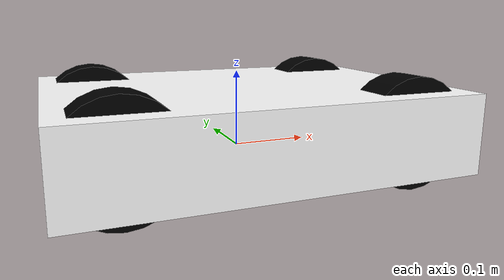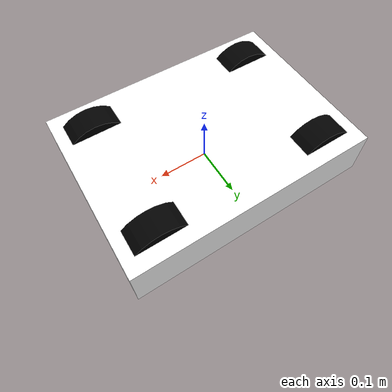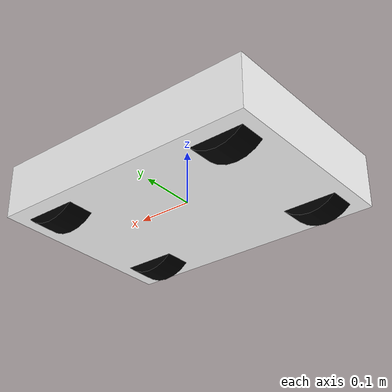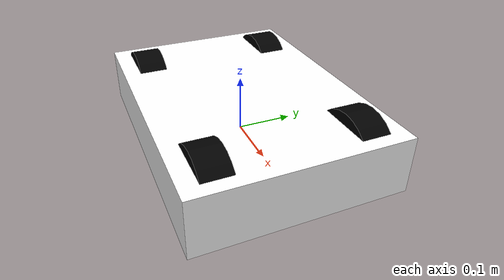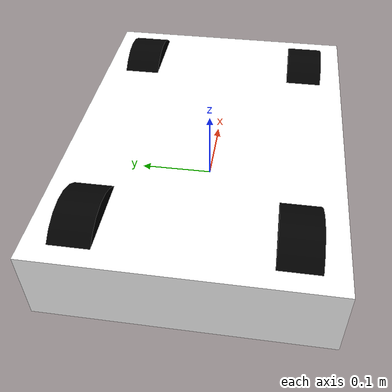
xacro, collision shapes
<?xml version="1.0" encoding="utf-8"?>

<robot name="fw_mini" xmlns:xacro="http://www.ros.org/wiki/xacro">

    <xacro:include filename="$(find fw-mini)/urdf/macros.xacro" />

    <link name="base_footprint">
    </link>

    <link name="base_link">
        <visual>
            <geometry>
                <mesh filename="package://fw-mini/meshes/fw-mini-chassis.STL" scale="1 1 1"/>
            </geometry>
            <origin xyz="0.2475 0.19 0.07" rpy="1.57 0 -1.57" />
            <material name="white">
                <color rgba="1 1 1 1" />
            </material>
        </visual>
        <collision>
            <geometry>
                <box size="0.495 0.36 0.1" />
            </geometry>
            <origin xyz="0.0 0.0 0.0" rpy="0.0 0.0 0.0" />
        </collision>
        <inertial>
            <origin xyz="0 0 0" />
            <mass value="20" />
            <inertia ixx="0.132" ixy="0" ixz="0" iyy="0.147" iyz="0" izz="0.0182" />
        </inertial>
    </link>

    <joint name="base_link2base_footprint" type="fixed">
        <parent link="base_footprint" />
        <child link="base_link"/>
        <origin xyz="0 0 0.032" />
    </joint>

    <link name="left_steering_hinge">
        <visual>
            <geometry>
                <cylinder radius="0.02" length="0.005" />
            </geometry>
            <origin xyz="0 0 0" rpy="1.57 0 0" />
            <material name="black">
                <color rgba="0.0 0.0 0.0 1.0" />
            </material>
        </visual>
        <collision>
            <geometry>
                <cylinder radius="0.01" length="0.005" />
            </geometry>
            <origin xyz="0.0 0.0 0.0" rpy="1.57 0.0 0.0" />
        </collision>
        <inertial>
            <origin xyz="0 0 0" />
            <mass value="1" />
            <inertia ixx="2.7E-05" ixy="0" ixz="0" iyy="2.7E-05" iyz="0" izz="5E-05" />
        </inertial>
    </link>

    <joint name="left_steering_hinge_joint" type="revolute">
        <parent link="base_link" />
        <child link="left_steering_hinge" />
        <origin xyz="0.175 0.125 0" />
        <axis xyz="0 0 1" />
        <limit lower="-1.57" upper="1.57" effort="10.0" velocity="50.0"/>
    </joint>

    <link name="left_front_wheel">
        <visual>
            <geometry>
                <mesh filename="package://fw-mini/meshes/fw-mini-luntai.STL" scale="1 1 1"/>
            </geometry>
            <origin xyz="0.073 -0.305 0.425" rpy="1.57 1.57 -3.14" />
            <material name="black">
                <color rgba="0.0 0.0 0.0 1.0" />
            </material>
        </visual>
        <collision>
            <geometry>
                <cylinder radius="0.07" length="0.05" />
            </geometry>
            <origin xyz="0.0 0.0 0.0" rpy="1.57 0.0 0.0" />
        </collision>
        <inertial>
            <origin xyz="0 0 0" />
            <mass value="4" />
            <inertia
            ixx="0.01603" ixy="0" ixz="0"
            iyy="0.01603" iyz="0"
            izz="0.0288"
            />
        </inertial>
    </link>

    <joint name="left_front_wheel_joint" type="continuous">
        <parent link="left_steering_hinge" />
        <child link="left_front_wheel" />
        <origin xyz="0 0.0 0" />
        <axis xyz="0 1 0" />
        <limit effort="10" velocity="1000" />
    </joint>

    <link name="right_steering_hinge">
        <visual>
            <geometry>
                 <cylinder radius="0.02" length="0.005" />
            </geometry>
            <origin xyz="0 0 0" rpy="1.57 0 0" />
            <material name="black">
                <color rgba="0.0 0.0 0.0 1.0" />
            </material>
        </visual>
        <collision>
            <geometry>
                <cylinder radius="0.01" length="0.005" />
            </geometry>
            <origin xyz="0.0 0.0 0.0" rpy="1.57 0.0 0.0" />
        </collision>
        <inertial>
            <origin xyz="0 0 0" />
            <mass value="1" />
            <inertia ixx="2.7E-05" ixy="0" ixz="0" iyy="2.7E-05" iyz="0" izz="5E-05" />
        </inertial>
    </link>

    <joint name="right_steering_hinge_joint" type="revolute">
        <parent link="base_link" />
        <child link="right_steering_hinge" />
        <origin xyz="0.175 -0.125 0" />
        <axis xyz="0 0 1" />
        <limit lower="-1.57" upper="1.57" effort="10.0" velocity="50.0"/>
    </joint>

     <link name="right_front_wheel">
        <visual>
            <geometry>
                <mesh filename="package://fw-mini/meshes/fw-mini-luntai.STL" scale="1 1 1"/>
            </geometry>
            <origin xyz="-0.073 0.305 0.425" rpy="1.57 1.57 0" />
            <material name="black">
                <color rgba="0.0 0.0 0.0 1.0" />
            </material>
        </visual>
        <collision>
            <geometry>
                <cylinder radius="0.07" length="0.05" />
            </geometry>
            <origin xyz="0.0 0.0 0.0" rpy="1.57 0.0 0.0" />
        </collision>
        <inertial>
            <origin xyz="0 0 0" />
            <mass value="4" />
            <inertia
            ixx="0.01603" ixy="0" ixz="0"
            iyy="0.01603" iyz="0"
            izz="0.0288"
            />
        </inertial>
    </link>

    <joint name="right_front_wheel_joint" type="continuous">
        <parent link="right_steering_hinge" />
        <child link="right_front_wheel" />
        <origin xyz="0 -0.0 0" />
        <axis xyz="0 1 0" />
        <limit effort="10" velocity="1000" />
    </joint>

    <link name="rear_left_steering_hinge">
        <visual>
            <geometry>
                <cylinder radius="0.02" length="0.005" />
            </geometry>
            <origin xyz="0 0 0" rpy="1.57 0 0" />
            <material name="black">
                <color rgba="0.0 0.0 0.0 1.0" />
            </material>
        </visual>
        <collision>
            <geometry>
                <cylinder radius="0.01" length="0.005" />
            </geometry>
            <origin xyz="0.0 0.0 0.0" rpy="1.57 0.0 0.0" />
        </collision>
        <inertial>
            <origin xyz="0 0 0" />
            <mass value="1" />
            <inertia ixx="2.7E-05" ixy="0" ixz="0" iyy="2.7E-05" iyz="0" izz="5E-05" />
        </inertial>
    </link>

    <joint name="rear_left_steering_hinge_joint" type="revolute">
        <parent link="base_link" />
        <child link="rear_left_steering_hinge" />
        <origin xyz="-0.175 0.125 0" />
        <axis xyz="0 0 1" />
        <limit lower="-1.57" upper="1.57" effort="10.0" velocity="50.0"/>
    </joint>

    <link name="left_rear_wheel">
        <visual>
            <geometry>
                <mesh filename="package://fw-mini/meshes/fw-mini-luntai.STL" scale="1 1 1"/>
            </geometry>
            <origin xyz="0.073 -0.305 0.425" rpy="1.57 1.57 3.14" />
            <material name="black">
                <color rgba="0.0 0.0 0.0 1.0" />
            </material>
        </visual>
        <collision>
            <geometry>
                <cylinder radius="0.07" length="0.05" />
            </geometry>
            <origin xyz="0.0 0.0 0.0" rpy="1.57 0.0 0.0" />
        </collision>
        <inertial>
            <origin xyz="0 0 0" />
            <mass value="4" />
            <inertia
            ixx="0.01603" ixy="0" ixz="0"
            iyy="0.01603" iyz="0"
            izz="0.0288"
            />
        </inertial>
    </link>

    <joint name="left_rear_wheel_joint" type="continuous">
        <parent link="rear_left_steering_hinge" />
        <child link="left_rear_wheel" />
        <origin xyz="0 0.0 0" />
        <axis xyz="0 1 0" />
        <limit effort="10" velocity="1000" />
    </joint>

    <link name="rear_right_steering_hinge">
        <visual>
            <geometry>
                <cylinder radius="0.02" length="0.005" />
            </geometry>
            <origin xyz="0 0 0" rpy="1.57 0 0" />
            <material name="black">
                <color rgba="0.0 0.0 0.0 1.0" />
            </material>
        </visual>
        <collision>
            <geometry>
                <cylinder radius="0.01" length="0.005" />
            </geometry>
            <origin xyz="0.0 0.0 0.0" rpy="1.57 0.0 0.0" />
        </collision>
        <inertial>
            <origin xyz="0 0 0" />
            <mass value="1" />
            <inertia ixx="2.7E-05" ixy="0" ixz="0" iyy="2.7E-05" iyz="0" izz="5E-05" />
        </inertial>
    </link>

    <joint name="rear_right_steering_hinge_joint" type="revolute">
        <parent link="base_link" />
        <child link="rear_right_steering_hinge" />
        <origin xyz="-0.175 -0.125 0" />
        <axis xyz="0 0 1" />
        <limit lower="-1.57" upper="1.57" effort="10.0" velocity="50.0"/>
    </joint>

    <link name="right_rear_wheel">
        <visual>
            <geometry>
                <mesh filename="package://fw-mini/meshes/fw-mini-luntai.STL" scale="1 1 1"/>
            </geometry>
            <origin xyz="-0.073 0.305 0.425" rpy="1.57 1.57 0" />
            <material name="black">
                <color rgba="0.0 0.0 0.0 1.0" />
            </material>
        </visual>
        <collision>
            <geometry>
                <cylinder radius="0.07" length="0.05" />
            </geometry>
            <origin xyz="0.0 0.0 0.0" rpy="1.57 0.0 0.0" />
        </collision>
        <inertial>
            <origin xyz="0 0 0" />
            <mass value="4" />
            <inertia
            ixx="0.01603" ixy="0" ixz="0"
            iyy="0.01603" iyz="0"
            izz="0.0288"
            />
        </inertial>

    </link>

    <joint name="right_rear_wheel_joint" type="continuous">
        <parent link="rear_right_steering_hinge" />
        <child link="right_rear_wheel" />
        <origin xyz="0 -0.0 0" />
        <axis xyz="0 1 0" />
        <limit effort="10" velocity="1000" />
    </joint>

  <xacro:include filename="$(find fw-mini)/urdf/fw-mini.gazebo" />

</robot>
